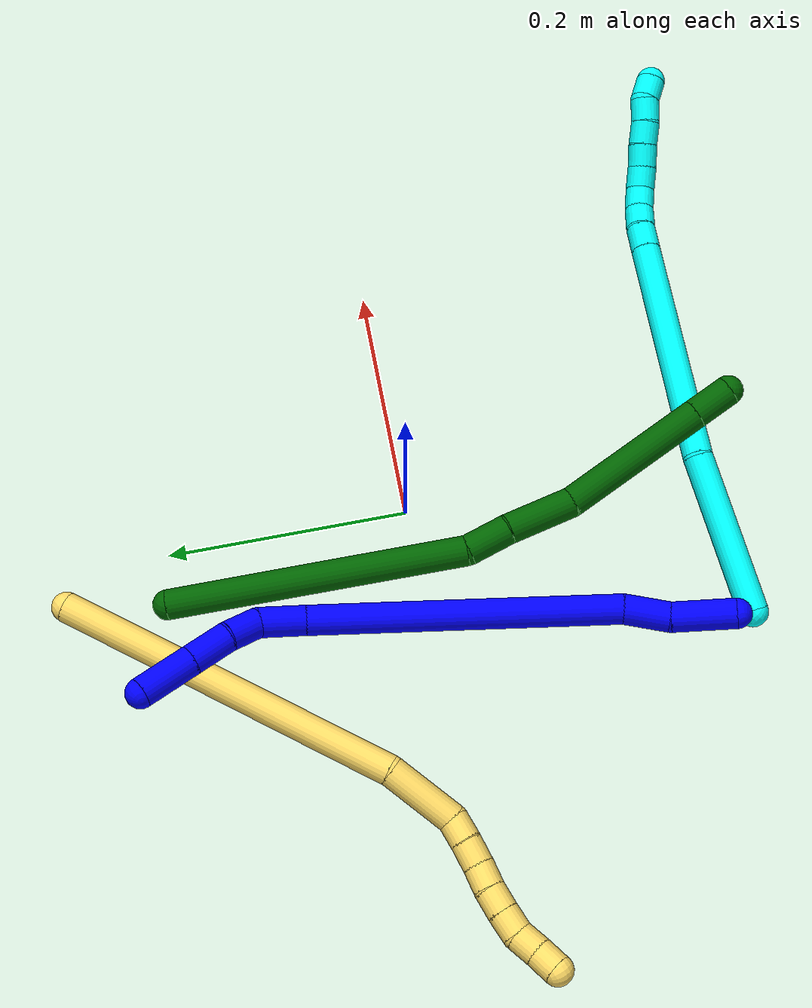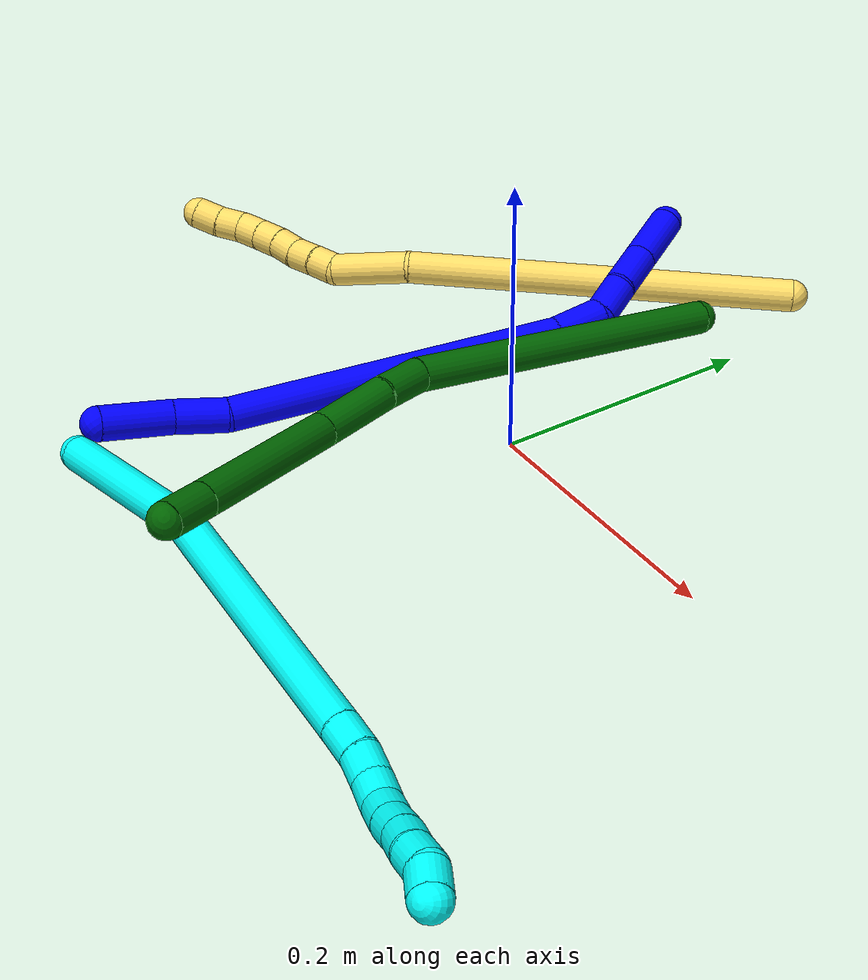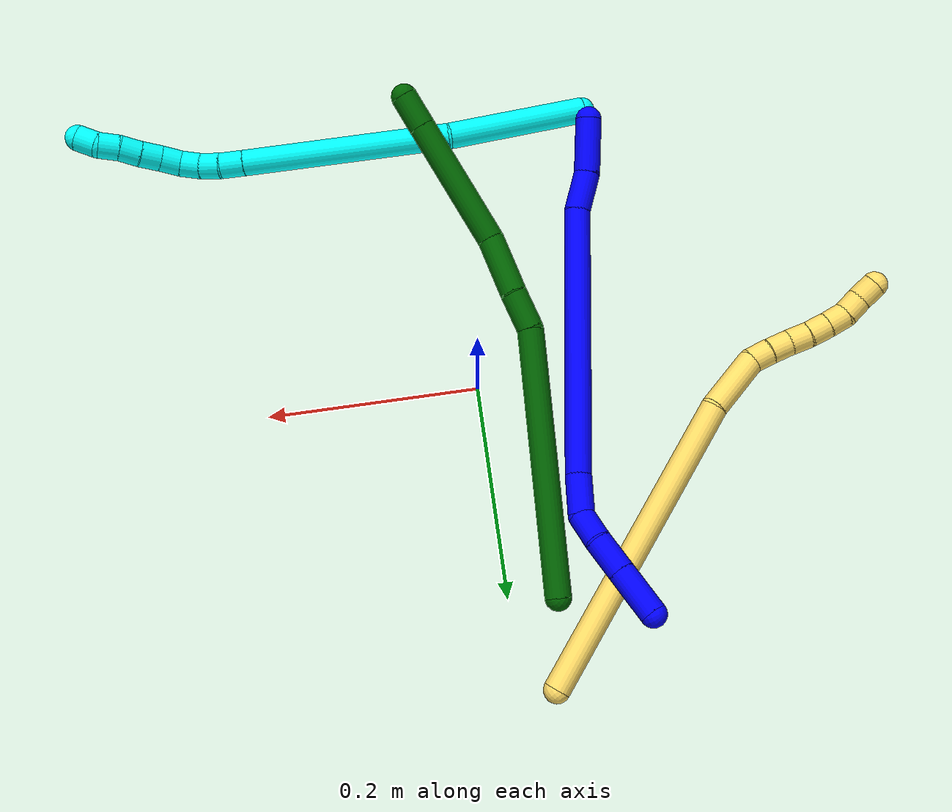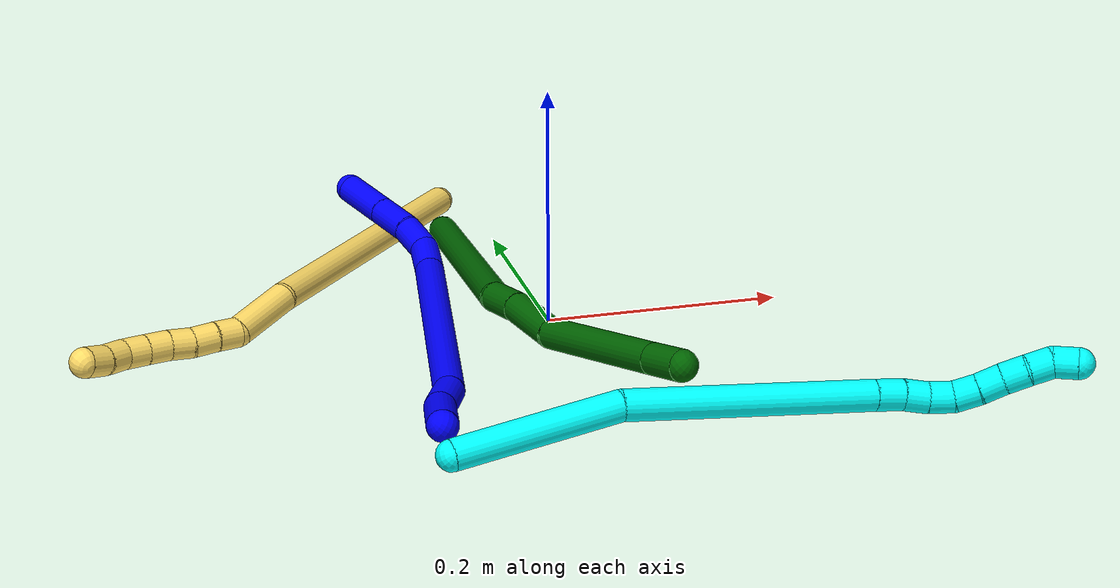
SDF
<sdf version="1.7">
 <world name="default">
  <model name="1">
   <static>0</static>
   <link name="1">
    <collision name="collision-cylinder-e_1_1_4">
     <pose>0.007492 0.023482 -0.009505 -1.9554 0.287556 -0.423145</pose>
     <geometry><cylinder><radius>0.0125</radius><length>0.052835</length></cylinder></geometry>
     <surface>
      <friction><ode><mu>1.16</mu><mu2>1.16</mu2><slip1>0</slip1><slip2>0</slip2></ode></friction>
      <contact><ode><kp>1e+06</kp><kd>1</kd><max_vel>0</max_vel><min_depth>0.001</min_depth></ode></contact>
     </surface>
    </collision>
    <visual name="visual-cylinder-e_1_1_4">
     <pose>0.007492 0.023482 -0.009505 -1.9554 0.287556 -0.423145</pose>
     <geometry><cylinder><radius>0.0125</radius><length>0.052835</length></cylinder></geometry>
     <material><ambient>0 0 1 1</ambient></material>
    </visual>
    <collision name="collision-cylinder-e_2_4_5">
     <pose>0.023475 0.061616 -0.02817 -2.12959 0.456728 -0.794299</pose>
     <geometry><cylinder><radius>0.0125</radius><length>0.038506</length></cylinder></geometry>
     <surface>
      <friction><ode><mu>1.16</mu><mu2>1.16</mu2><slip1>0</slip1><slip2>0</slip2></ode></friction>
      <contact><ode><kp>1e+06</kp><kd>1</kd><max_vel>0</max_vel><min_depth>0.001</min_depth></ode></contact>
     </surface>
    </collision>
    <visual name="visual-cylinder-e_2_4_5">
     <pose>0.023475 0.061616 -0.02817 -2.12959 0.456728 -0.794299</pose>
     <geometry><cylinder><radius>0.0125</radius><length>0.038506</length></cylinder></geometry>
     <material><ambient>0 0 1 1</ambient></material>
    </visual>
    <collision name="collision-cylinder-e_3_5_6">
     <pose>0.083991 0.189464 -0.069565 -1.84821 0.416204 -0.54543</pose>
     <geometry><cylinder><radius>0.0125</radius><length>0.257365</length></cylinder></geometry>
     <surface>
      <friction><ode><mu>1.16</mu><mu2>1.16</mu2><slip1>0</slip1><slip2>0</slip2></ode></friction>
      <contact><ode><kp>1e+06</kp><kd>1</kd><max_vel>0</max_vel><min_depth>0.001</min_depth></ode></contact>
     </surface>
    </collision>
    <visual name="visual-cylinder-e_3_5_6">
     <pose>0.083991 0.189464 -0.069565 -1.84821 0.416204 -0.54543</pose>
     <geometry><cylinder><radius>0.0125</radius><length>0.257365</length></cylinder></geometry>
     <material><ambient>0 0 1 1</ambient></material>
    </visual>
    <collision name="collision-cylinder-e_4_6_7">
     <pose>0.145712 0.319515 -0.103894 -1.69446 0.518707 -0.583555</pose>
     <geometry><cylinder><radius>0.0125</radius><length>0.039114</length></cylinder></geometry>
     <surface>
      <friction><ode><mu>1.16</mu><mu2>1.16</mu2><slip1>0</slip1><slip2>0</slip2></ode></friction>
      <contact><ode><kp>1e+06</kp><kd>1</kd><max_vel>0</max_vel><min_depth>0.001</min_depth></ode></contact>
     </surface>
    </collision>
    <visual name="visual-cylinder-e_4_6_7">
     <pose>0.145712 0.319515 -0.103894 -1.69446 0.518707 -0.583555</pose>
     <geometry><cylinder><radius>0.0125</radius><length>0.039114</length></cylinder></geometry>
     <material><ambient>0 0 1 1</ambient></material>
    </visual>
    <collision name="collision-cylinder-e_5_7_8">
     <pose>0.161009 0.348729 -0.100422 -1.14754 0.391835 -0.255142</pose>
     <geometry><cylinder><radius>0.0125</radius><length>0.029333</length></cylinder></geometry>
     <surface>
      <friction><ode><mu>1.16</mu><mu2>1.16</mu2><slip1>0</slip1><slip2>0</slip2></ode></friction>
      <contact><ode><kp>1e+06</kp><kd>1</kd><max_vel>0</max_vel><min_depth>0.001</min_depth></ode></contact>
     </surface>
    </collision>
    <visual name="visual-cylinder-e_5_7_8">
     <pose>0.161009 0.348729 -0.100422 -1.14754 0.391835 -0.255142</pose>
     <geometry><cylinder><radius>0.0125</radius><length>0.029333</length></cylinder></geometry>
     <material><ambient>0 0 1 1</ambient></material>
    </visual>
    <collision name="collision-cylinder-e_6_8_9">
     <pose>0.17022 0.377258 -0.088567 -1.19997 0.205182 -0.140631</pose>
     <geometry><cylinder><radius>0.0125</radius><length>0.035443</length></cylinder></geometry>
     <surface>
      <friction><ode><mu>1.16</mu><mu2>1.16</mu2><slip1>0</slip1><slip2>0</slip2></ode></friction>
      <contact><ode><kp>1e+06</kp><kd>1</kd><max_vel>0</max_vel><min_depth>0.001</min_depth></ode></contact>
     </surface>
    </collision>
    <visual name="visual-cylinder-e_6_8_9">
     <pose>0.17022 0.377258 -0.088567 -1.19997 0.205182 -0.140631</pose>
     <geometry><cylinder><radius>0.0125</radius><length>0.035443</length></cylinder></geometry>
     <material><ambient>0 0 1 1</ambient></material>
    </visual>
    <collision name="collision-cylinder-e_7_9_2">
     <pose>0.17866 0.415057 -0.073872 -1.20005 0.205181 -0.140642</pose>
     <geometry><cylinder><radius>0.0125</radius><length>0.047404</length></cylinder></geometry>
     <surface>
      <friction><ode><mu>1.16</mu><mu2>1.16</mu2><slip1>0</slip1><slip2>0</slip2></ode></friction>
      <contact><ode><kp>1e+06</kp><kd>1</kd><max_vel>0</max_vel><min_depth>0.001</min_depth></ode></contact>
     </surface>
    </collision>
    <visual name="visual-cylinder-e_7_9_2">
     <pose>0.17866 0.415057 -0.073872 -1.20005 0.205181 -0.140642</pose>
     <geometry><cylinder><radius>0.0125</radius><length>0.047404</length></cylinder></geometry>
     <material><ambient>0 0 1 1</ambient></material>
    </visual>
    <collision name="collision-sphere-2">
     <pose>0.183489 0.436685 -0.065465 0 -0 0</pose>
     <geometry><sphere><radius>0.0125</radius></sphere></geometry>
     <surface>
      <friction><ode><mu>1.16</mu><mu2>1.16</mu2><slip1>0</slip1><slip2>0</slip2></ode></friction>
      <contact><ode><kp>1e+06</kp><kd>1</kd><max_vel>0</max_vel><min_depth>0.001</min_depth></ode></contact>
     </surface>
    </collision>
    <visual name="visual-sphere-2">
     <pose>0.183489 0.436685 -0.065465 0 -0 0</pose>
     <geometry><sphere><radius>0.0125</radius></sphere></geometry>
     <material><ambient>0 0 1 1</ambient></material>
    </visual>
    <collision name="collision-sphere-9">
     <pose>0.173831 0.393429 -0.08228 0 -0 0</pose>
     <geometry><sphere><radius>0.0125</radius></sphere></geometry>
     <surface>
      <friction><ode><mu>1.16</mu><mu2>1.16</mu2><slip1>0</slip1><slip2>0</slip2></ode></friction>
      <contact><ode><kp>1e+06</kp><kd>1</kd><max_vel>0</max_vel><min_depth>0.001</min_depth></ode></contact>
     </surface>
    </collision>
    <visual name="visual-sphere-9">
     <pose>0.173831 0.393429 -0.08228 0 -0 0</pose>
     <geometry><sphere><radius>0.0125</radius></sphere></geometry>
     <material><ambient>0 0 1 1</ambient></material>
    </visual>
    <collision name="collision-sphere-4">
     <pose>0.014985 0.046965 -0.019009 0 -0 0</pose>
     <geometry><sphere><radius>0.0125</radius></sphere></geometry>
     <surface>
      <friction><ode><mu>1.16</mu><mu2>1.16</mu2><slip1>0</slip1><slip2>0</slip2></ode></friction>
      <contact><ode><kp>1e+06</kp><kd>1</kd><max_vel>0</max_vel><min_depth>0.001</min_depth></ode></contact>
     </surface>
    </collision>
    <visual name="visual-sphere-4">
     <pose>0.014985 0.046965 -0.019009 0 -0 0</pose>
     <geometry><sphere><radius>0.0125</radius></sphere></geometry>
     <material><ambient>0 0 1 1</ambient></material>
    </visual>
    <collision name="collision-sphere-1">
     <geometry><sphere><radius>0.0125</radius></sphere></geometry>
     <surface>
      <friction><ode><mu>1.16</mu><mu2>1.16</mu2><slip1>0</slip1><slip2>0</slip2></ode></friction>
      <contact><ode><kp>1e+06</kp><kd>1</kd><max_vel>0</max_vel><min_depth>0.001</min_depth></ode></contact>
     </surface>
    </collision>
    <visual name="visual-sphere-1">
     <geometry><sphere><radius>0.0125</radius></sphere></geometry>
     <material><ambient>0 0 1 1</ambient></material>
    </visual>
    <collision name="collision-sphere-8">
     <pose>0.16661 0.361088 -0.094854 0 -0 0</pose>
     <geometry><sphere><radius>0.0125</radius></sphere></geometry>
     <surface>
      <friction><ode><mu>1.16</mu><mu2>1.16</mu2><slip1>0</slip1><slip2>0</slip2></ode></friction>
      <contact><ode><kp>1e+06</kp><kd>1</kd><max_vel>0</max_vel><min_depth>0.001</min_depth></ode></contact>
     </surface>
    </collision>
    <visual name="visual-sphere-8">
     <pose>0.16661 0.361088 -0.094854 0 -0 0</pose>
     <geometry><sphere><radius>0.0125</radius></sphere></geometry>
     <material><ambient>0 0 1 1</ambient></material>
    </visual>
    <collision name="collision-sphere-5">
     <pose>0.031966 0.076267 -0.037331 0 -0 0</pose>
     <geometry><sphere><radius>0.0125</radius></sphere></geometry>
     <surface>
      <friction><ode><mu>1.16</mu><mu2>1.16</mu2><slip1>0</slip1><slip2>0</slip2></ode></friction>
      <contact><ode><kp>1e+06</kp><kd>1</kd><max_vel>0</max_vel><min_depth>0.001</min_depth></ode></contact>
     </surface>
    </collision>
    <visual name="visual-sphere-5">
     <pose>0.031966 0.076267 -0.037331 0 -0 0</pose>
     <geometry><sphere><radius>0.0125</radius></sphere></geometry>
     <material><ambient>0 0 1 1</ambient></material>
    </visual>
    <collision name="collision-sphere-6">
     <pose>0.136016 0.30266 -0.101799 0 -0 0</pose>
     <geometry><sphere><radius>0.0125</radius></sphere></geometry>
     <surface>
      <friction><ode><mu>1.16</mu><mu2>1.16</mu2><slip1>0</slip1><slip2>0</slip2></ode></friction>
      <contact><ode><kp>1e+06</kp><kd>1</kd><max_vel>0</max_vel><min_depth>0.001</min_depth></ode></contact>
     </surface>
    </collision>
    <visual name="visual-sphere-6">
     <pose>0.136016 0.30266 -0.101799 0 -0 0</pose>
     <geometry><sphere><radius>0.0125</radius></sphere></geometry>
     <material><ambient>0 0 1 1</ambient></material>
    </visual>
    <collision name="collision-sphere-7">
     <pose>0.155408 0.33637 -0.105989 0 -0 0</pose>
     <geometry><sphere><radius>0.0125</radius></sphere></geometry>
     <surface>
      <friction><ode><mu>1.16</mu><mu2>1.16</mu2><slip1>0</slip1><slip2>0</slip2></ode></friction>
      <contact><ode><kp>1e+06</kp><kd>1</kd><max_vel>0</max_vel><min_depth>0.001</min_depth></ode></contact>
     </surface>
    </collision>
    <visual name="visual-sphere-7">
     <pose>0.155408 0.33637 -0.105989 0 -0 0</pose>
     <geometry><sphere><radius>0.0125</radius></sphere></geometry>
     <material><ambient>0 0 1 1</ambient></material>
    </visual>
    <inertial>
     <pose>0.095682 0.216296 -0.066282 0 -0 0</pose>
     <mass>0.5</mass>
     <inertia>
      <ixx>0.000478</ixx>
      <ixy>0</ixy>
      <ixz>0</ixz>
      <iyy>-0.000702</iyy>
      <iyz>0</iyz>
      <izz>-0.001897</izz>
     </inertia>
    </inertial>
   </link>
   <pose>-0.143414 -0.243729 0.027978 -0.302015 -0.892091 0.547492</pose>
  </model>
  <model name="3">
   <static>0</static>
   <link name="3">
    <collision name="collision-cylinder-e_1_1_4">
     <pose>0.055555 0.033594 -0.019488 -2.09646 0.960689 -1.47074</pose>
     <geometry><cylinder><radius>0.0125</radius><length>0.135569</length></cylinder></geometry>
     <surface>
      <friction><ode><mu>1.16</mu><mu2>1.16</mu2><slip1>0</slip1><slip2>0</slip2></ode></friction>
      <contact><ode><kp>1e+06</kp><kd>1</kd><max_vel>0</max_vel><min_depth>0.001</min_depth></ode></contact>
     </surface>
    </collision>
    <visual name="visual-cylinder-e_1_1_4">
     <pose>0.055555 0.033594 -0.019488 -2.09646 0.960689 -1.47074</pose>
     <geometry><cylinder><radius>0.0125</radius><length>0.135569</length></cylinder></geometry>
     <material><ambient>0.003922 1 0.996078 1</ambient></material>
    </visual>
    <collision name="collision-cylinder-e_2_4_5">
     <pose>0.178439 0.135795 -0.068455 -1.97663 0.733731 -1.05616</pose>
     <geometry><cylinder><radius>0.0125</radius><length>0.201087</length></cylinder></geometry>
     <surface>
      <friction><ode><mu>1.16</mu><mu2>1.16</mu2><slip1>0</slip1><slip2>0</slip2></ode></friction>
      <contact><ode><kp>1e+06</kp><kd>1</kd><max_vel>0</max_vel><min_depth>0.001</min_depth></ode></contact>
     </surface>
    </collision>
    <visual name="visual-cylinder-e_2_4_5">
     <pose>0.178439 0.135795 -0.068455 -1.97663 0.733731 -1.05616</pose>
     <geometry><cylinder><radius>0.0125</radius><length>0.201087</length></cylinder></geometry>
     <material><ambient>0.003922 1 0.996078 1</ambient></material>
    </visual>
    <collision name="collision-cylinder-e_3_5_6">
     <pose>0.253281 0.212344 -0.101313 -1.97299 0.716233 -1.02995</pose>
     <geometry><cylinder><radius>0.0125</radius><length>0.022886</length></cylinder></geometry>
     <surface>
      <friction><ode><mu>1.16</mu><mu2>1.16</mu2><slip1>0</slip1><slip2>0</slip2></ode></friction>
      <contact><ode><kp>1e+06</kp><kd>1</kd><max_vel>0</max_vel><min_depth>0.001</min_depth></ode></contact>
     </surface>
    </collision>
    <visual name="visual-cylinder-e_3_5_6">
     <pose>0.253281 0.212344 -0.101313 -1.97299 0.716233 -1.02995</pose>
     <geometry><cylinder><radius>0.0125</radius><length>0.022886</length></cylinder></geometry>
     <material><ambient>0.003922 1 0.996078 1</ambient></material>
    </visual>
    <collision name="collision-cylinder-e_4_6_7">
     <pose>0.266072 0.228181 -0.108206 -1.98969 0.548301 -0.817364</pose>
     <geometry><cylinder><radius>0.0125</radius><length>0.020252</length></cylinder></geometry>
     <surface>
      <friction><ode><mu>1.16</mu><mu2>1.16</mu2><slip1>0</slip1><slip2>0</slip2></ode></friction>
      <contact><ode><kp>1e+06</kp><kd>1</kd><max_vel>0</max_vel><min_depth>0.001</min_depth></ode></contact>
     </surface>
    </collision>
    <visual name="visual-cylinder-e_4_6_7">
     <pose>0.266072 0.228181 -0.108206 -1.98969 0.548301 -0.817364</pose>
     <geometry><cylinder><radius>0.0125</radius><length>0.020252</length></cylinder></geometry>
     <material><ambient>0.003922 1 0.996078 1</ambient></material>
    </visual>
    <collision name="collision-cylinder-e_5_7_8">
     <pose>0.276881 0.242689 -0.116893 -2.23448 0.582609 -1.10292</pose>
     <geometry><cylinder><radius>0.0125</radius><length>0.020107</length></cylinder></geometry>
     <surface>
      <friction><ode><mu>1.16</mu><mu2>1.16</mu2><slip1>0</slip1><slip2>0</slip2></ode></friction>
      <contact><ode><kp>1e+06</kp><kd>1</kd><max_vel>0</max_vel><min_depth>0.001</min_depth></ode></contact>
     </surface>
    </collision>
    <visual name="visual-cylinder-e_5_7_8">
     <pose>0.276881 0.242689 -0.116893 -2.23448 0.582609 -1.10292</pose>
     <geometry><cylinder><radius>0.0125</radius><length>0.020107</length></cylinder></geometry>
     <material><ambient>0.003922 1 0.996078 1</ambient></material>
    </visual>
    <collision name="collision-cylinder-e_6_8_9">
     <pose>0.288618 0.253356 -0.128788 -2.59902 0.668832 -1.79152</pose>
     <geometry><cylinder><radius>0.0125</radius><length>0.020015</length></cylinder></geometry>
     <surface>
      <friction><ode><mu>1.16</mu><mu2>1.16</mu2><slip1>0</slip1><slip2>0</slip2></ode></friction>
      <contact><ode><kp>1e+06</kp><kd>1</kd><max_vel>0</max_vel><min_depth>0.001</min_depth></ode></contact>
     </surface>
    </collision>
    <visual name="visual-cylinder-e_6_8_9">
     <pose>0.288618 0.253356 -0.128788 -2.59902 0.668832 -1.79152</pose>
     <geometry><cylinder><radius>0.0125</radius><length>0.020015</length></cylinder></geometry>
     <material><ambient>0.003922 1 0.996078 1</ambient></material>
    </visual>
    <collision name="collision-cylinder-e_7_9_10">
     <pose>0.301709 0.260607 -0.142053 -2.68692 0.757525 -2.08852</pose>
     <geometry><cylinder><radius>0.0125</radius><length>0.020041</length></cylinder></geometry>
     <surface>
      <friction><ode><mu>1.16</mu><mu2>1.16</mu2><slip1>0</slip1><slip2>0</slip2></ode></friction>
      <contact><ode><kp>1e+06</kp><kd>1</kd><max_vel>0</max_vel><min_depth>0.001</min_depth></ode></contact>
     </surface>
    </collision>
    <visual name="visual-cylinder-e_7_9_10">
     <pose>0.301709 0.260607 -0.142053 -2.68692 0.757525 -2.08852</pose>
     <geometry><cylinder><radius>0.0125</radius><length>0.020041</length></cylinder></geometry>
     <material><ambient>0.003922 1 0.996078 1</ambient></material>
    </visual>
    <collision name="collision-cylinder-e_8_10_11">
     <pose>0.314767 0.267361 -0.155635 -2.67391 0.663993 -1.93238</pose>
     <geometry><cylinder><radius>0.0125</radius><length>0.020033</length></cylinder></geometry>
     <surface>
      <friction><ode><mu>1.16</mu><mu2>1.16</mu2><slip1>0</slip1><slip2>0</slip2></ode></friction>
      <contact><ode><kp>1e+06</kp><kd>1</kd><max_vel>0</max_vel><min_depth>0.001</min_depth></ode></contact>
     </surface>
    </collision>
    <visual name="visual-cylinder-e_8_10_11">
     <pose>0.314767 0.267361 -0.155635 -2.67391 0.663993 -1.93238</pose>
     <geometry><cylinder><radius>0.0125</radius><length>0.020033</length></cylinder></geometry>
     <material><ambient>0.003922 1 0.996078 1</ambient></material>
    </visual>
    <collision name="collision-cylinder-e_9_11_12">
     <pose>0.327937 0.275121 -0.16846 -2.51315 0.774528 -1.796</pose>
     <geometry><cylinder><radius>0.0125</radius><length>0.020008</length></cylinder></geometry>
     <surface>
      <friction><ode><mu>1.16</mu><mu2>1.16</mu2><slip1>0</slip1><slip2>0</slip2></ode></friction>
      <contact><ode><kp>1e+06</kp><kd>1</kd><max_vel>0</max_vel><min_depth>0.001</min_depth></ode></contact>
     </surface>
    </collision>
    <visual name="visual-cylinder-e_9_11_12">
     <pose>0.327937 0.275121 -0.16846 -2.51315 0.774528 -1.796</pose>
     <geometry><cylinder><radius>0.0125</radius><length>0.020008</length></cylinder></geometry>
     <material><ambient>0.003922 1 0.996078 1</ambient></material>
    </visual>
    <collision name="collision-cylinder-e_10_12_2">
     <pose>0.33864 0.285943 -0.180761 -2.34842 0.379715 -0.860444</pose>
     <geometry><cylinder><radius>0.0125</radius><length>0.020001</length></cylinder></geometry>
     <surface>
      <friction><ode><mu>1.16</mu><mu2>1.16</mu2><slip1>0</slip1><slip2>0</slip2></ode></friction>
      <contact><ode><kp>1e+06</kp><kd>1</kd><max_vel>0</max_vel><min_depth>0.001</min_depth></ode></contact>
     </surface>
    </collision>
    <visual name="visual-cylinder-e_10_12_2">
     <pose>0.33864 0.285943 -0.180761 -2.34842 0.379715 -0.860444</pose>
     <geometry><cylinder><radius>0.0125</radius><length>0.020001</length></cylinder></geometry>
     <material><ambient>0.003922 1 0.996078 1</ambient></material>
    </visual>
    <collision name="collision-sphere-2">
     <pose>0.342347 0.292561 -0.187277 0 -0 0</pose>
     <geometry><sphere><radius>0.0125</radius></sphere></geometry>
     <surface>
      <friction><ode><mu>1.16</mu><mu2>1.16</mu2><slip1>0</slip1><slip2>0</slip2></ode></friction>
      <contact><ode><kp>1e+06</kp><kd>1</kd><max_vel>0</max_vel><min_depth>0.001</min_depth></ode></contact>
     </surface>
    </collision>
    <visual name="visual-sphere-2">
     <pose>0.342347 0.292561 -0.187277 0 -0 0</pose>
     <geometry><sphere><radius>0.0125</radius></sphere></geometry>
     <material><ambient>0.003922 1 0.996078 1</ambient></material>
    </visual>
    <collision name="collision-sphere-12">
     <pose>0.334933 0.279324 -0.174244 0 -0 0</pose>
     <geometry><sphere><radius>0.0125</radius></sphere></geometry>
     <surface>
      <friction><ode><mu>1.16</mu><mu2>1.16</mu2><slip1>0</slip1><slip2>0</slip2></ode></friction>
      <contact><ode><kp>1e+06</kp><kd>1</kd><max_vel>0</max_vel><min_depth>0.001</min_depth></ode></contact>
     </surface>
    </collision>
    <visual name="visual-sphere-12">
     <pose>0.334933 0.279324 -0.174244 0 -0 0</pose>
     <geometry><sphere><radius>0.0125</radius></sphere></geometry>
     <material><ambient>0.003922 1 0.996078 1</ambient></material>
    </visual>
    <collision name="collision-sphere-11">
     <pose>0.32094 0.270917 -0.162676 0 -0 0</pose>
     <geometry><sphere><radius>0.0125</radius></sphere></geometry>
     <surface>
      <friction><ode><mu>1.16</mu><mu2>1.16</mu2><slip1>0</slip1><slip2>0</slip2></ode></friction>
      <contact><ode><kp>1e+06</kp><kd>1</kd><max_vel>0</max_vel><min_depth>0.001</min_depth></ode></contact>
     </surface>
    </collision>
    <visual name="visual-sphere-11">
     <pose>0.32094 0.270917 -0.162676 0 -0 0</pose>
     <geometry><sphere><radius>0.0125</radius></sphere></geometry>
     <material><ambient>0.003922 1 0.996078 1</ambient></material>
    </visual>
    <collision name="collision-sphere-10">
     <pose>0.308594 0.263805 -0.148593 0 -0 0</pose>
     <geometry><sphere><radius>0.0125</radius></sphere></geometry>
     <surface>
      <friction><ode><mu>1.16</mu><mu2>1.16</mu2><slip1>0</slip1><slip2>0</slip2></ode></friction>
      <contact><ode><kp>1e+06</kp><kd>1</kd><max_vel>0</max_vel><min_depth>0.001</min_depth></ode></contact>
     </surface>
    </collision>
    <visual name="visual-sphere-10">
     <pose>0.308594 0.263805 -0.148593 0 -0 0</pose>
     <geometry><sphere><radius>0.0125</radius></sphere></geometry>
     <material><ambient>0.003922 1 0.996078 1</ambient></material>
    </visual>
    <collision name="collision-sphere-9">
     <pose>0.294824 0.25741 -0.135512 0 -0 0</pose>
     <geometry><sphere><radius>0.0125</radius></sphere></geometry>
     <surface>
      <friction><ode><mu>1.16</mu><mu2>1.16</mu2><slip1>0</slip1><slip2>0</slip2></ode></friction>
      <contact><ode><kp>1e+06</kp><kd>1</kd><max_vel>0</max_vel><min_depth>0.001</min_depth></ode></contact>
     </surface>
    </collision>
    <visual name="visual-sphere-9">
     <pose>0.294824 0.25741 -0.135512 0 -0 0</pose>
     <geometry><sphere><radius>0.0125</radius></sphere></geometry>
     <material><ambient>0.003922 1 0.996078 1</ambient></material>
    </visual>
    <collision name="collision-sphere-4">
     <pose>0.111111 0.067188 -0.038976 0 -0 0</pose>
     <geometry><sphere><radius>0.0125</radius></sphere></geometry>
     <surface>
      <friction><ode><mu>1.16</mu><mu2>1.16</mu2><slip1>0</slip1><slip2>0</slip2></ode></friction>
      <contact><ode><kp>1e+06</kp><kd>1</kd><max_vel>0</max_vel><min_depth>0.001</min_depth></ode></contact>
     </surface>
    </collision>
    <visual name="visual-sphere-4">
     <pose>0.111111 0.067188 -0.038976 0 -0 0</pose>
     <geometry><sphere><radius>0.0125</radius></sphere></geometry>
     <material><ambient>0.003922 1 0.996078 1</ambient></material>
    </visual>
    <collision name="collision-sphere-1">
     <geometry><sphere><radius>0.0125</radius></sphere></geometry>
     <surface>
      <friction><ode><mu>1.16</mu><mu2>1.16</mu2><slip1>0</slip1><slip2>0</slip2></ode></friction>
      <contact><ode><kp>1e+06</kp><kd>1</kd><max_vel>0</max_vel><min_depth>0.001</min_depth></ode></contact>
     </surface>
    </collision>
    <visual name="visual-sphere-1">
     <geometry><sphere><radius>0.0125</radius></sphere></geometry>
     <material><ambient>0.003922 1 0.996078 1</ambient></material>
    </visual>
    <collision name="collision-sphere-8">
     <pose>0.282413 0.249302 -0.122064 0 -0 0</pose>
     <geometry><sphere><radius>0.0125</radius></sphere></geometry>
     <surface>
      <friction><ode><mu>1.16</mu><mu2>1.16</mu2><slip1>0</slip1><slip2>0</slip2></ode></friction>
      <contact><ode><kp>1e+06</kp><kd>1</kd><max_vel>0</max_vel><min_depth>0.001</min_depth></ode></contact>
     </surface>
    </collision>
    <visual name="visual-sphere-8">
     <pose>0.282413 0.249302 -0.122064 0 -0 0</pose>
     <geometry><sphere><radius>0.0125</radius></sphere></geometry>
     <material><ambient>0.003922 1 0.996078 1</ambient></material>
    </visual>
    <collision name="collision-sphere-5">
     <pose>0.245768 0.204402 -0.097934 0 -0 0</pose>
     <geometry><sphere><radius>0.0125</radius></sphere></geometry>
     <surface>
      <friction><ode><mu>1.16</mu><mu2>1.16</mu2><slip1>0</slip1><slip2>0</slip2></ode></friction>
      <contact><ode><kp>1e+06</kp><kd>1</kd><max_vel>0</max_vel><min_depth>0.001</min_depth></ode></contact>
     </surface>
    </collision>
    <visual name="visual-sphere-5">
     <pose>0.245768 0.204402 -0.097934 0 -0 0</pose>
     <geometry><sphere><radius>0.0125</radius></sphere></geometry>
     <material><ambient>0.003922 1 0.996078 1</ambient></material>
    </visual>
    <collision name="collision-sphere-6">
     <pose>0.260793 0.220287 -0.104691 0 -0 0</pose>
     <geometry><sphere><radius>0.0125</radius></sphere></geometry>
     <surface>
      <friction><ode><mu>1.16</mu><mu2>1.16</mu2><slip1>0</slip1><slip2>0</slip2></ode></friction>
      <contact><ode><kp>1e+06</kp><kd>1</kd><max_vel>0</max_vel><min_depth>0.001</min_depth></ode></contact>
     </surface>
    </collision>
    <visual name="visual-sphere-6">
     <pose>0.260793 0.220287 -0.104691 0 -0 0</pose>
     <geometry><sphere><radius>0.0125</radius></sphere></geometry>
     <material><ambient>0.003922 1 0.996078 1</ambient></material>
    </visual>
    <collision name="collision-sphere-7">
     <pose>0.27135 0.236076 -0.111721 0 -0 0</pose>
     <geometry><sphere><radius>0.0125</radius></sphere></geometry>
     <surface>
      <friction><ode><mu>1.16</mu><mu2>1.16</mu2><slip1>0</slip1><slip2>0</slip2></ode></friction>
      <contact><ode><kp>1e+06</kp><kd>1</kd><max_vel>0</max_vel><min_depth>0.001</min_depth></ode></contact>
     </surface>
    </collision>
    <visual name="visual-sphere-7">
     <pose>0.27135 0.236076 -0.111721 0 -0 0</pose>
     <geometry><sphere><radius>0.0125</radius></sphere></geometry>
     <material><ambient>0.003922 1 0.996078 1</ambient></material>
    </visual>
    <inertial>
     <pose>0.183259 0.146191 -0.077592 0 -0 0</pose>
     <mass>0.5</mass>
     <inertia>
      <ixx>-0.000282</ixx>
      <ixy>0</ixy>
      <ixz>0</ixz>
      <iyy>-0.000173</iyy>
      <iyz>0</iyz>
      <izz>-0.001235</izz>
     </inertia>
    </inertial>
   </link>
   <pose>-0.140548 -0.260982 0.011494 -2.22971 -0.410979 0.681465</pose>
  </model>
  <model name="5">
   <static>0</static>
   <link name="5">
    <collision name="collision-cylinder-e_1_1_4">
     <pose>-0.055573 -0.120719 0.066983 1.06423 -0.382691 -0.227122</pose>
     <geometry><cylinder><radius>0.0125</radius><length>0.297645</length></cylinder></geometry>
     <surface>
      <friction><ode><mu>1.16</mu><mu2>1.16</mu2><slip1>0</slip1><slip2>0</slip2></ode></friction>
      <contact><ode><kp>1e+06</kp><kd>1</kd><max_vel>0</max_vel><min_depth>0.001</min_depth></ode></contact>
     </surface>
    </collision>
    <visual name="visual-cylinder-e_1_1_4">
     <pose>-0.055573 -0.120719 0.066983 1.06423 -0.382691 -0.227122</pose>
     <geometry><cylinder><radius>0.0125</radius><length>0.297645</length></cylinder></geometry>
     <material><ambient>1 0.858824 0.4 1</ambient></material>
    </visual>
    <collision name="collision-cylinder-e_2_4_5">
     <pose>-0.115953 -0.269705 0.144463 1.2152 -0.158091 -0.110048</pose>
     <geometry><cylinder><radius>0.0125</radius><length>0.061067</length></cylinder></geometry>
     <surface>
      <friction><ode><mu>1.16</mu><mu2>1.16</mu2><slip1>0</slip1><slip2>0</slip2></ode></friction>
      <contact><ode><kp>1e+06</kp><kd>1</kd><max_vel>0</max_vel><min_depth>0.001</min_depth></ode></contact>
     </surface>
    </collision>
    <visual name="visual-cylinder-e_2_4_5">
     <pose>-0.115953 -0.269705 0.144463 1.2152 -0.158091 -0.110048</pose>
     <geometry><cylinder><radius>0.0125</radius><length>0.061067</length></cylinder></geometry>
     <material><ambient>1 0.858824 0.4 1</ambient></material>
    </visual>
    <collision name="collision-cylinder-e_3_5_6">
     <pose>-0.12371 -0.307651 0.15406 1.66359 -0.294641 -0.32286</pose>
     <geometry><cylinder><radius>0.0125</radius><length>0.020319</length></cylinder></geometry>
     <surface>
      <friction><ode><mu>1.16</mu><mu2>1.16</mu2><slip1>0</slip1><slip2>0</slip2></ode></friction>
      <contact><ode><kp>1e+06</kp><kd>1</kd><max_vel>0</max_vel><min_depth>0.001</min_depth></ode></contact>
     </surface>
    </collision>
    <visual name="visual-cylinder-e_3_5_6">
     <pose>-0.12371 -0.307651 0.15406 1.66359 -0.294641 -0.32286</pose>
     <geometry><cylinder><radius>0.0125</radius><length>0.020319</length></cylinder></geometry>
     <material><ambient>1 0.858824 0.4 1</ambient></material>
    </visual>
    <collision name="collision-cylinder-e_4_6_7">
     <pose>-0.128981 -0.327479 0.151945 1.68987 -0.223206 -0.251222</pose>
     <geometry><cylinder><radius>0.0125</radius><length>0.020961</length></cylinder></geometry>
     <surface>
      <friction><ode><mu>1.16</mu><mu2>1.16</mu2><slip1>0</slip1><slip2>0</slip2></ode></friction>
      <contact><ode><kp>1e+06</kp><kd>1</kd><max_vel>0</max_vel><min_depth>0.001</min_depth></ode></contact>
     </surface>
    </collision>
    <visual name="visual-cylinder-e_4_6_7">
     <pose>-0.128981 -0.327479 0.151945 1.68987 -0.223206 -0.251222</pose>
     <geometry><cylinder><radius>0.0125</radius><length>0.020961</length></cylinder></geometry>
     <material><ambient>1 0.858824 0.4 1</ambient></material>
    </visual>
    <collision name="collision-cylinder-e_5_7_8">
     <pose>-0.134505 -0.346888 0.148725 1.78411 -0.326119 -0.402423</pose>
     <geometry><cylinder><radius>0.0125</radius><length>0.020007</length></cylinder></geometry>
     <surface>
      <friction><ode><mu>1.16</mu><mu2>1.16</mu2><slip1>0</slip1><slip2>0</slip2></ode></friction>
      <contact><ode><kp>1e+06</kp><kd>1</kd><max_vel>0</max_vel><min_depth>0.001</min_depth></ode></contact>
     </surface>
    </collision>
    <visual name="visual-cylinder-e_5_7_8">
     <pose>-0.134505 -0.346888 0.148725 1.78411 -0.326119 -0.402423</pose>
     <geometry><cylinder><radius>0.0125</radius><length>0.020007</length></cylinder></geometry>
     <material><ambient>1 0.858824 0.4 1</ambient></material>
    </visual>
    <collision name="collision-cylinder-e_6_8_9">
     <pose>-0.140662 -0.365664 0.145845 1.6624 -0.299657 -0.327953</pose>
     <geometry><cylinder><radius>0.0125</radius><length>0.020001</length></cylinder></geometry>
     <surface>
      <friction><ode><mu>1.16</mu><mu2>1.16</mu2><slip1>0</slip1><slip2>0</slip2></ode></friction>
      <contact><ode><kp>1e+06</kp><kd>1</kd><max_vel>0</max_vel><min_depth>0.001</min_depth></ode></contact>
     </surface>
    </collision>
    <visual name="visual-cylinder-e_6_8_9">
     <pose>-0.140662 -0.365664 0.145845 1.6624 -0.299657 -0.327953</pose>
     <geometry><cylinder><radius>0.0125</radius><length>0.020001</length></cylinder></geometry>
     <material><ambient>1 0.858824 0.4 1</ambient></material>
    </visual>
    <collision name="collision-cylinder-e_7_9_10">
     <pose>-0.146819 -0.384643 0.14455 1.61525 -0.326193 -0.340745</pose>
     <geometry><cylinder><radius>0.0125</radius><length>0.02</length></cylinder></geometry>
     <surface>
      <friction><ode><mu>1.16</mu><mu2>1.16</mu2><slip1>0</slip1><slip2>0</slip2></ode></friction>
      <contact><ode><kp>1e+06</kp><kd>1</kd><max_vel>0</max_vel><min_depth>0.001</min_depth></ode></contact>
     </surface>
    </collision>
    <visual name="visual-cylinder-e_7_9_10">
     <pose>-0.146819 -0.384643 0.14455 1.61525 -0.326193 -0.340745</pose>
     <geometry><cylinder><radius>0.0125</radius><length>0.02</length></cylinder></geometry>
     <material><ambient>1 0.858824 0.4 1</ambient></material>
    </visual>
    <collision name="collision-cylinder-e_8_10_11">
     <pose>-0.15408 -0.40296 0.146399 1.31983 -0.417688 -0.325989</pose>
     <geometry><cylinder><radius>0.0125</radius><length>0.02</length></cylinder></geometry>
     <surface>
      <friction><ode><mu>1.16</mu><mu2>1.16</mu2><slip1>0</slip1><slip2>0</slip2></ode></friction>
      <contact><ode><kp>1e+06</kp><kd>1</kd><max_vel>0</max_vel><min_depth>0.001</min_depth></ode></contact>
     </surface>
    </collision>
    <visual name="visual-cylinder-e_8_10_11">
     <pose>-0.15408 -0.40296 0.146399 1.31983 -0.417688 -0.325989</pose>
     <geometry><cylinder><radius>0.0125</radius><length>0.02</length></cylinder></geometry>
     <material><ambient>1 0.858824 0.4 1</ambient></material>
    </visual>
    <collision name="collision-cylinder-e_9_11_2">
     <pose>-0.163234 -0.420305 0.150048 1.40971 -0.534985 -0.458065</pose>
     <geometry><cylinder><radius>0.0125</radius><length>0.02</length></cylinder></geometry>
     <surface>
      <friction><ode><mu>1.16</mu><mu2>1.16</mu2><slip1>0</slip1><slip2>0</slip2></ode></friction>
      <contact><ode><kp>1e+06</kp><kd>1</kd><max_vel>0</max_vel><min_depth>0.001</min_depth></ode></contact>
     </surface>
    </collision>
    <visual name="visual-cylinder-e_9_11_2">
     <pose>-0.163234 -0.420305 0.150048 1.40971 -0.534985 -0.458065</pose>
     <geometry><cylinder><radius>0.0125</radius><length>0.02</length></cylinder></geometry>
     <material><ambient>1 0.858824 0.4 1</ambient></material>
    </visual>
    <collision name="collision-sphere-2">
     <pose>-0.168333 -0.428797 0.151428 0 -0 0</pose>
     <geometry><sphere><radius>0.0125</radius></sphere></geometry>
     <surface>
      <friction><ode><mu>1.16</mu><mu2>1.16</mu2><slip1>0</slip1><slip2>0</slip2></ode></friction>
      <contact><ode><kp>1e+06</kp><kd>1</kd><max_vel>0</max_vel><min_depth>0.001</min_depth></ode></contact>
     </surface>
    </collision>
    <visual name="visual-sphere-2">
     <pose>-0.168333 -0.428797 0.151428 0 -0 0</pose>
     <geometry><sphere><radius>0.0125</radius></sphere></geometry>
     <material><ambient>1 0.858824 0.4 1</ambient></material>
    </visual>
    <collision name="collision-sphere-11">
     <pose>-0.158136 -0.411814 0.148669 0 -0 0</pose>
     <geometry><sphere><radius>0.0125</radius></sphere></geometry>
     <surface>
      <friction><ode><mu>1.16</mu><mu2>1.16</mu2><slip1>0</slip1><slip2>0</slip2></ode></friction>
      <contact><ode><kp>1e+06</kp><kd>1</kd><max_vel>0</max_vel><min_depth>0.001</min_depth></ode></contact>
     </surface>
    </collision>
    <visual name="visual-sphere-11">
     <pose>-0.158136 -0.411814 0.148669 0 -0 0</pose>
     <geometry><sphere><radius>0.0125</radius></sphere></geometry>
     <material><ambient>1 0.858824 0.4 1</ambient></material>
    </visual>
    <collision name="collision-sphere-10">
     <pose>-0.150023 -0.394106 0.144129 0 -0 0</pose>
     <geometry><sphere><radius>0.0125</radius></sphere></geometry>
     <surface>
      <friction><ode><mu>1.16</mu><mu2>1.16</mu2><slip1>0</slip1><slip2>0</slip2></ode></friction>
      <contact><ode><kp>1e+06</kp><kd>1</kd><max_vel>0</max_vel><min_depth>0.001</min_depth></ode></contact>
     </surface>
    </collision>
    <visual name="visual-sphere-10">
     <pose>-0.150023 -0.394106 0.144129 0 -0 0</pose>
     <geometry><sphere><radius>0.0125</radius></sphere></geometry>
     <material><ambient>1 0.858824 0.4 1</ambient></material>
    </visual>
    <collision name="collision-sphere-9">
     <pose>-0.143614 -0.375179 0.144971 0 -0 0</pose>
     <geometry><sphere><radius>0.0125</radius></sphere></geometry>
     <surface>
      <friction><ode><mu>1.16</mu><mu2>1.16</mu2><slip1>0</slip1><slip2>0</slip2></ode></friction>
      <contact><ode><kp>1e+06</kp><kd>1</kd><max_vel>0</max_vel><min_depth>0.001</min_depth></ode></contact>
     </surface>
    </collision>
    <visual name="visual-sphere-9">
     <pose>-0.143614 -0.375179 0.144971 0 -0 0</pose>
     <geometry><sphere><radius>0.0125</radius></sphere></geometry>
     <material><ambient>1 0.858824 0.4 1</ambient></material>
    </visual>
    <collision name="collision-sphere-4">
     <pose>-0.111146 -0.241438 0.133966 0 -0 0</pose>
     <geometry><sphere><radius>0.0125</radius></sphere></geometry>
     <surface>
      <friction><ode><mu>1.16</mu><mu2>1.16</mu2><slip1>0</slip1><slip2>0</slip2></ode></friction>
      <contact><ode><kp>1e+06</kp><kd>1</kd><max_vel>0</max_vel><min_depth>0.001</min_depth></ode></contact>
     </surface>
    </collision>
    <visual name="visual-sphere-4">
     <pose>-0.111146 -0.241438 0.133966 0 -0 0</pose>
     <geometry><sphere><radius>0.0125</radius></sphere></geometry>
     <material><ambient>1 0.858824 0.4 1</ambient></material>
    </visual>
    <collision name="collision-sphere-1">
     <geometry><sphere><radius>0.0125</radius></sphere></geometry>
     <surface>
      <friction><ode><mu>1.16</mu><mu2>1.16</mu2><slip1>0</slip1><slip2>0</slip2></ode></friction>
      <contact><ode><kp>1e+06</kp><kd>1</kd><max_vel>0</max_vel><min_depth>0.001</min_depth></ode></contact>
     </surface>
    </collision>
    <visual name="visual-sphere-1">
     <geometry><sphere><radius>0.0125</radius></sphere></geometry>
     <material><ambient>1 0.858824 0.4 1</ambient></material>
    </visual>
    <collision name="collision-sphere-8">
     <pose>-0.13771 -0.35615 0.146719 0 -0 0</pose>
     <geometry><sphere><radius>0.0125</radius></sphere></geometry>
     <surface>
      <friction><ode><mu>1.16</mu><mu2>1.16</mu2><slip1>0</slip1><slip2>0</slip2></ode></friction>
      <contact><ode><kp>1e+06</kp><kd>1</kd><max_vel>0</max_vel><min_depth>0.001</min_depth></ode></contact>
     </surface>
    </collision>
    <visual name="visual-sphere-8">
     <pose>-0.13771 -0.35615 0.146719 0 -0 0</pose>
     <geometry><sphere><radius>0.0125</radius></sphere></geometry>
     <material><ambient>1 0.858824 0.4 1</ambient></material>
    </visual>
    <collision name="collision-sphere-5">
     <pose>-0.12076 -0.297971 0.154961 0 -0 0</pose>
     <geometry><sphere><radius>0.0125</radius></sphere></geometry>
     <surface>
      <friction><ode><mu>1.16</mu><mu2>1.16</mu2><slip1>0</slip1><slip2>0</slip2></ode></friction>
      <contact><ode><kp>1e+06</kp><kd>1</kd><max_vel>0</max_vel><min_depth>0.001</min_depth></ode></contact>
     </surface>
    </collision>
    <visual name="visual-sphere-5">
     <pose>-0.12076 -0.297971 0.154961 0 -0 0</pose>
     <geometry><sphere><radius>0.0125</radius></sphere></geometry>
     <material><ambient>1 0.858824 0.4 1</ambient></material>
    </visual>
    <collision name="collision-sphere-6">
     <pose>-0.126661 -0.317331 0.153159 0 -0 0</pose>
     <geometry><sphere><radius>0.0125</radius></sphere></geometry>
     <surface>
      <friction><ode><mu>1.16</mu><mu2>1.16</mu2><slip1>0</slip1><slip2>0</slip2></ode></friction>
      <contact><ode><kp>1e+06</kp><kd>1</kd><max_vel>0</max_vel><min_depth>0.001</min_depth></ode></contact>
     </surface>
    </collision>
    <visual name="visual-sphere-6">
     <pose>-0.126661 -0.317331 0.153159 0 -0 0</pose>
     <geometry><sphere><radius>0.0125</radius></sphere></geometry>
     <material><ambient>1 0.858824 0.4 1</ambient></material>
    </visual>
    <collision name="collision-sphere-7">
     <pose>-0.131301 -0.337627 0.150731 0 -0 0</pose>
     <geometry><sphere><radius>0.0125</radius></sphere></geometry>
     <surface>
      <friction><ode><mu>1.16</mu><mu2>1.16</mu2><slip1>0</slip1><slip2>0</slip2></ode></friction>
      <contact><ode><kp>1e+06</kp><kd>1</kd><max_vel>0</max_vel><min_depth>0.001</min_depth></ode></contact>
     </surface>
    </collision>
    <visual name="visual-sphere-7">
     <pose>-0.131301 -0.337627 0.150731 0 -0 0</pose>
     <geometry><sphere><radius>0.0125</radius></sphere></geometry>
     <material><ambient>1 0.858824 0.4 1</ambient></material>
    </visual>
    <inertial>
     <pose>-0.087253 -0.207858 0.099574 0 -0 0</pose>
     <mass>0.5</mass>
     <inertia>
      <ixx>0.001547</ixx>
      <ixy>0</ixy>
      <ixz>0</ixz>
      <iyy>0.000715</iyy>
      <iyz>0</iyz>
      <izz>0.002665</izz>
     </inertia>
    </inertial>
   </link>
   <pose>-0.03169 0.286996 0.011494 2.21511 1.2241 1.03344</pose>
  </model>
  <model name="6">
   <static>0</static>
   <link name="6">
    <collision name="collision-cylinder-e_1_1_4">
     <pose>0.025048 -0.110194 -0.051482 2.00786 0.203104 0.317473</pose>
     <geometry><cylinder><radius>0.0125</radius><length>0.248358</length></cylinder></geometry>
     <surface>
      <friction><ode><mu>1.16</mu><mu2>1.16</mu2><slip1>0</slip1><slip2>0</slip2></ode></friction>
      <contact><ode><kp>1e+06</kp><kd>1</kd><max_vel>0</max_vel><min_depth>0.001</min_depth></ode></contact>
     </surface>
    </collision>
    <visual name="visual-cylinder-e_1_1_4">
     <pose>0.025048 -0.110194 -0.051482 2.00786 0.203104 0.317473</pose>
     <geometry><cylinder><radius>0.0125</radius><length>0.248358</length></cylinder></geometry>
     <material><ambient>0 0.392157 0.003922 1</ambient></material>
    </visual>
    <collision name="collision-cylinder-e_2_4_5">
     <pose>0.048535 -0.235454 -0.11332 2.17303 -0.085225 -0.16175</pose>
     <geometry><cylinder><radius>0.0125</radius><length>0.036699</length></cylinder></geometry>
     <surface>
      <friction><ode><mu>1.16</mu><mu2>1.16</mu2><slip1>0</slip1><slip2>0</slip2></ode></friction>
      <contact><ode><kp>1e+06</kp><kd>1</kd><max_vel>0</max_vel><min_depth>0.001</min_depth></ode></contact>
     </surface>
    </collision>
    <visual name="visual-cylinder-e_2_4_5">
     <pose>0.048535 -0.235454 -0.11332 2.17303 -0.085225 -0.16175</pose>
     <geometry><cylinder><radius>0.0125</radius><length>0.036699</length></cylinder></geometry>
     <material><ambient>0 0.392157 0.003922 1</ambient></material>
    </visual>
    <collision name="collision-cylinder-e_3_5_6">
     <pose>0.043787 -0.275713 -0.13678 2.05038 -0.111702 -0.183675</pose>
     <geometry><cylinder><radius>0.0125</radius><length>0.057149</length></cylinder></geometry>
     <surface>
      <friction><ode><mu>1.16</mu><mu2>1.16</mu2><slip1>0</slip1><slip2>0</slip2></ode></friction>
      <contact><ode><kp>1e+06</kp><kd>1</kd><max_vel>0</max_vel><min_depth>0.001</min_depth></ode></contact>
     </surface>
    </collision>
    <visual name="visual-cylinder-e_3_5_6">
     <pose>0.043787 -0.275713 -0.13678 2.05038 -0.111702 -0.183675</pose>
     <geometry><cylinder><radius>0.0125</radius><length>0.057149</length></cylinder></geometry>
     <material><ambient>0 0.392157 0.003922 1</ambient></material>
    </visual>
    <collision name="collision-cylinder-e_4_6_7">
     <pose>0.032054 -0.346739 -0.190999 2.30201 -0.137943 -0.30712</pose>
     <geometry><cylinder><radius>0.0125</radius><length>0.124328</length></cylinder></geometry>
     <surface>
      <friction><ode><mu>1.16</mu><mu2>1.16</mu2><slip1>0</slip1><slip2>0</slip2></ode></friction>
      <contact><ode><kp>1e+06</kp><kd>1</kd><max_vel>0</max_vel><min_depth>0.001</min_depth></ode></contact>
     </surface>
    </collision>
    <visual name="visual-cylinder-e_4_6_7">
     <pose>0.032054 -0.346739 -0.190999 2.30201 -0.137943 -0.30712</pose>
     <geometry><cylinder><radius>0.0125</radius><length>0.124328</length></cylinder></geometry>
     <material><ambient>0 0.392157 0.003922 1</ambient></material>
    </visual>
    <collision name="collision-cylinder-e_5_7_2">
     <pose>0.021363 -0.40486 -0.24327 2.30787 -0.128422 -0.288396</pose>
     <geometry><cylinder><radius>0.0125</radius><length>0.033466</length></cylinder></geometry>
     <surface>
      <friction><ode><mu>1.16</mu><mu2>1.16</mu2><slip1>0</slip1><slip2>0</slip2></ode></friction>
      <contact><ode><kp>1e+06</kp><kd>1</kd><max_vel>0</max_vel><min_depth>0.001</min_depth></ode></contact>
     </surface>
    </collision>
    <visual name="visual-cylinder-e_5_7_2">
     <pose>0.021363 -0.40486 -0.24327 2.30787 -0.128422 -0.288396</pose>
     <geometry><cylinder><radius>0.0125</radius><length>0.033466</length></cylinder></geometry>
     <material><ambient>0 0.392157 0.003922 1</ambient></material>
    </visual>
    <collision name="collision-sphere-2">
     <pose>0.01922 -0.417148 -0.254424 0 -0 0</pose>
     <geometry><sphere><radius>0.0125</radius></sphere></geometry>
     <surface>
      <friction><ode><mu>1.16</mu><mu2>1.16</mu2><slip1>0</slip1><slip2>0</slip2></ode></friction>
      <contact><ode><kp>1e+06</kp><kd>1</kd><max_vel>0</max_vel><min_depth>0.001</min_depth></ode></contact>
     </surface>
    </collision>
    <visual name="visual-sphere-2">
     <pose>0.01922 -0.417148 -0.254424 0 -0 0</pose>
     <geometry><sphere><radius>0.0125</radius></sphere></geometry>
     <material><ambient>0 0.392157 0.003922 1</ambient></material>
    </visual>
    <collision name="collision-sphere-7">
     <pose>0.023506 -0.392572 -0.232116 0 -0 0</pose>
     <geometry><sphere><radius>0.0125</radius></sphere></geometry>
     <surface>
      <friction><ode><mu>1.16</mu><mu2>1.16</mu2><slip1>0</slip1><slip2>0</slip2></ode></friction>
      <contact><ode><kp>1e+06</kp><kd>1</kd><max_vel>0</max_vel><min_depth>0.001</min_depth></ode></contact>
     </surface>
    </collision>
    <visual name="visual-sphere-7">
     <pose>0.023506 -0.392572 -0.232116 0 -0 0</pose>
     <geometry><sphere><radius>0.0125</radius></sphere></geometry>
     <material><ambient>0 0.392157 0.003922 1</ambient></material>
    </visual>
    <collision name="collision-sphere-6">
     <pose>0.040602 -0.300906 -0.149882 0 -0 0</pose>
     <geometry><sphere><radius>0.0125</radius></sphere></geometry>
     <surface>
      <friction><ode><mu>1.16</mu><mu2>1.16</mu2><slip1>0</slip1><slip2>0</slip2></ode></friction>
      <contact><ode><kp>1e+06</kp><kd>1</kd><max_vel>0</max_vel><min_depth>0.001</min_depth></ode></contact>
     </surface>
    </collision>
    <visual name="visual-sphere-6">
     <pose>0.040602 -0.300906 -0.149882 0 -0 0</pose>
     <geometry><sphere><radius>0.0125</radius></sphere></geometry>
     <material><ambient>0 0.392157 0.003922 1</ambient></material>
    </visual>
    <collision name="collision-sphere-5">
     <pose>0.046973 -0.25052 -0.123677 0 -0 0</pose>
     <geometry><sphere><radius>0.0125</radius></sphere></geometry>
     <surface>
      <friction><ode><mu>1.16</mu><mu2>1.16</mu2><slip1>0</slip1><slip2>0</slip2></ode></friction>
      <contact><ode><kp>1e+06</kp><kd>1</kd><max_vel>0</max_vel><min_depth>0.001</min_depth></ode></contact>
     </surface>
    </collision>
    <visual name="visual-sphere-5">
     <pose>0.046973 -0.25052 -0.123677 0 -0 0</pose>
     <geometry><sphere><radius>0.0125</radius></sphere></geometry>
     <material><ambient>0 0.392157 0.003922 1</ambient></material>
    </visual>
    <collision name="collision-sphere-1">
     <geometry><sphere><radius>0.0125</radius></sphere></geometry>
     <surface>
      <friction><ode><mu>1.16</mu><mu2>1.16</mu2><slip1>0</slip1><slip2>0</slip2></ode></friction>
      <contact><ode><kp>1e+06</kp><kd>1</kd><max_vel>0</max_vel><min_depth>0.001</min_depth></ode></contact>
     </surface>
    </collision>
    <visual name="visual-sphere-1">
     <geometry><sphere><radius>0.0125</radius></sphere></geometry>
     <material><ambient>0 0.392157 0.003922 1</ambient></material>
    </visual>
    <collision name="collision-sphere-4">
     <pose>0.050096 -0.220388 -0.102963 0 -0 0</pose>
     <geometry><sphere><radius>0.0125</radius></sphere></geometry>
     <surface>
      <friction><ode><mu>1.16</mu><mu2>1.16</mu2><slip1>0</slip1><slip2>0</slip2></ode></friction>
      <contact><ode><kp>1e+06</kp><kd>1</kd><max_vel>0</max_vel><min_depth>0.001</min_depth></ode></contact>
     </surface>
    </collision>
    <visual name="visual-sphere-4">
     <pose>0.050096 -0.220388 -0.102963 0 -0 0</pose>
     <geometry><sphere><radius>0.0125</radius></sphere></geometry>
     <material><ambient>0 0.392157 0.003922 1</ambient></material>
    </visual>
    <inertial>
     <pose>0.030409 -0.216847 -0.113299 0 -0 0</pose>
     <mass>0.5</mass>
     <inertia>
      <ixx>0.00172</ixx>
      <ixy>0</ixy>
      <ixz>0</ixz>
      <iyy>-0.000251</iyy>
      <iyz>0</iyz>
      <izz>0.001033</izz>
     </inertia>
    </inertial>
   </link>
   <pose>-0.045319 0.205843 0.012144 2.70957 -0.633106 -3.02055</pose>
  </model>
 </world>
</sdf>
